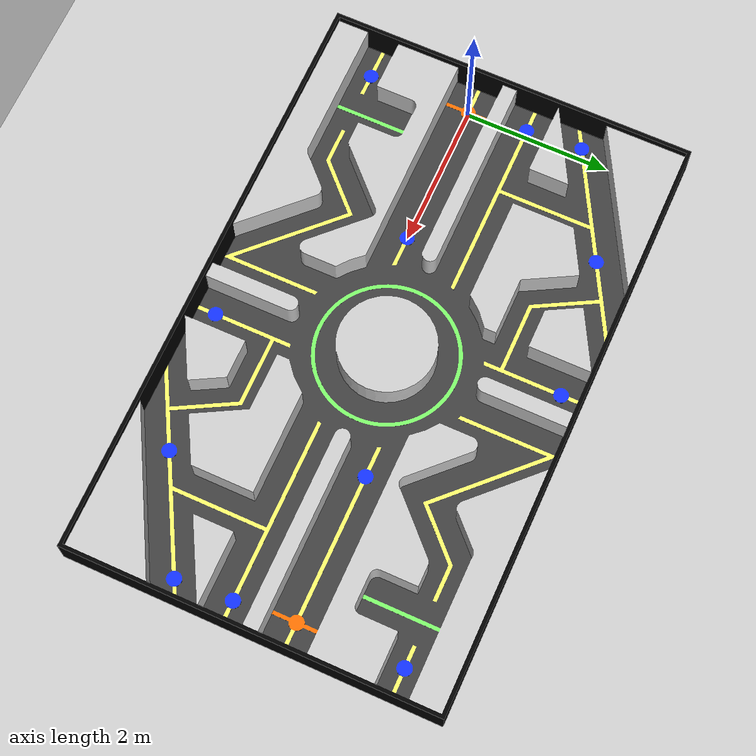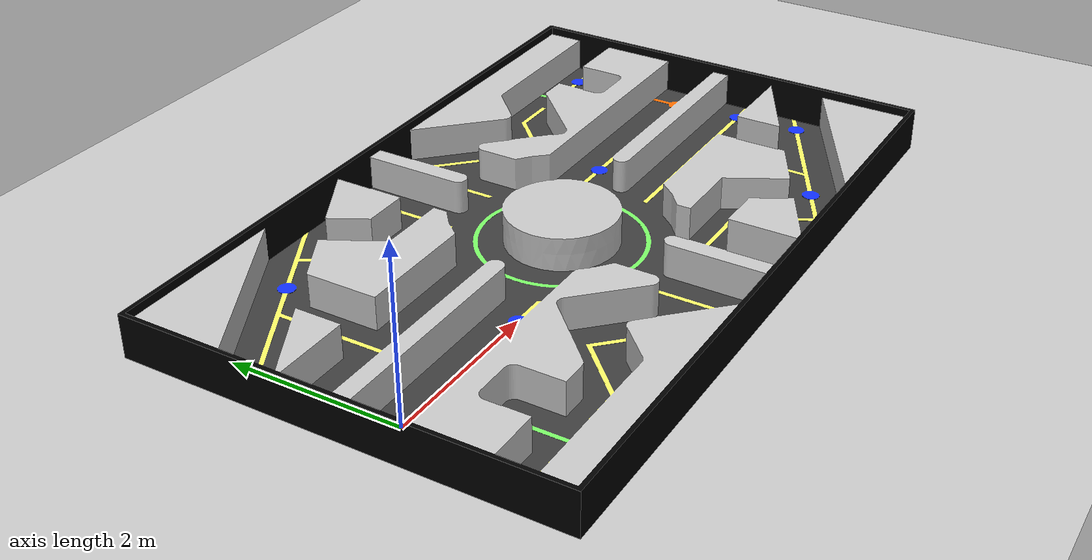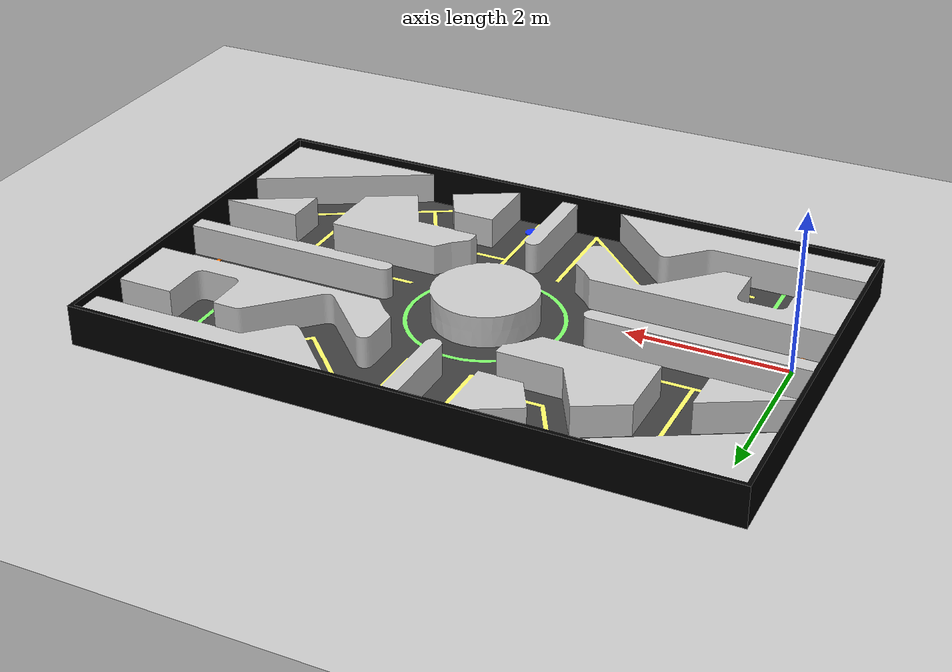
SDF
<?xml version="1.6" encoding="utf-8"?>
<sdf version="1.4">
  <world name="default">
    <gui>
      <camera name="default_camera">
        <pose>0.265873 1.353024 4.355823 0 1.223661 0</pose>
      </camera>
    </gui>

    <!-- A global light source -->
    <include>
      <uri>model://sun</uri>
    </include>

    <light name='user_point_light_4' type='point'>
      <pose frame=''>2.0 -3.0 2 0 -0 0</pose>
      <diffuse>0.3 0.3 0.3 1</diffuse>
      <specular>0.1 0.1 0.1 1</specular>
      <attenuation>
        <range>20</range>
        <constant>0.5</constant>
        <linear>0.01</linear>
        <quadratic>0.001</quadratic>
      </attenuation>
      <cast_shadows>0</cast_shadows>
      <direction>0 0 -1</direction>
    </light>

    <include>
      <uri>model://models/playroom_v2</uri>
      <pose>3.6 0.42 -0.1 0 0 0</pose>
      <name>playroom</name>
    </include>

		<include>
			<uri>model://ground_plane</uri>
		</include>

    <physics type="ode">
      <real_time_update_rate>1000.0</real_time_update_rate>
      <max_step_size>0.001</max_step_size>
      <real_time_factor>1</real_time_factor>
      <ode>
        <solver>
          <type>quick</type>
          <iters>150</iters>
          <precon_iters>0</precon_iters>
          <sor>1.400000</sor>
          <use_dynamic_moi_rescaling>1</use_dynamic_moi_rescaling>
        </solver>
        <constraints>
          <cfm>0.00001</cfm>
          <erp>0.2</erp>
          <contact_max_correcting_vel>2000.000000</contact_max_correcting_vel>
          <contact_surface_layer>0.01000</contact_surface_layer>
        </constraints>
      </ode>
    </physics>
    <scene>
        <ambient>1 1 1 1</ambient>
        <background>0.7 0.7 0.7 1</background>
        <shadows>false</shadows>
    </scene>

  </world>
</sdf>

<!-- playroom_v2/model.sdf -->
<sdf version='1.4'>
  <model name="hard_track">
    <link name="link">
      <collision name="collision">
        <geometry>
          <mesh>
            <uri>file://playroom_v2/meshes/collision_wall.stl</uri>
            <scale>0.001 0.001 0.001</scale>
          </mesh>
        </geometry>
      </collision>
      <visual name="visual">
        <geometry>
          <mesh>
            <uri>file://playroom_v2/meshes/visual_v5.dae</uri>
          </mesh>
        </geometry>
      </visual>
    </link>
    <static>1</static>
  </model>
</sdf>
